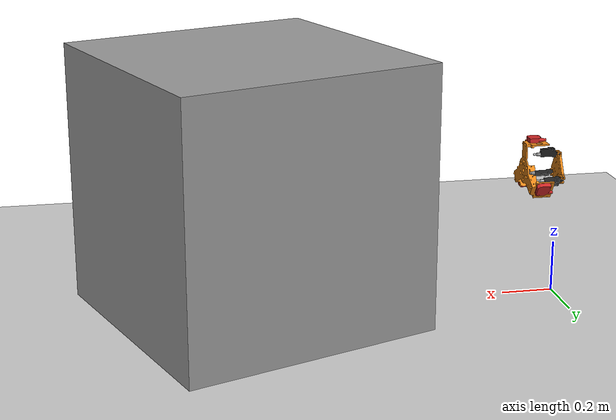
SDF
<sdf version="1.6">
 <world name="default">
  <light name="sun" type="directional">
   <pose>0 0 10 0 -0 0</pose>
   <diffuse>0.8 0.8 0.8 1</diffuse>
   <specular>0.2 0.2 0.2 1</specular>
   <attenuation>
    <range>1000</range>
    <constant>0.9</constant>
    <linear>0.01</linear>
    <quadratic>0.001</quadratic>
   </attenuation>
   <direction>-0.5 0.1 -0.9</direction>
  </light>
  <model name="ground_plane">
   <static>1</static>
   <link name="link">
    <collision name="collision">
     <geometry><plane><normal>0 0 1</normal><size>100 100</size></plane></geometry>
     <surface>
      <contact><collide_bitmask>65535</collide_bitmask></contact>
      <friction><ode><mu>100</mu><mu2>50</mu2></ode></friction>
     </surface>
    </collision>
    <visual name="visual">
     <cast_shadows>0</cast_shadows>
     <geometry><plane><normal>0 0 1</normal><size>100 100</size></plane></geometry>
     <material>
      <script><uri>file://media/materials/scripts/gazebo.material</uri><name>Gazebo/Grey</name></script>
     </material>
    </visual>
   </link>
  </model>
  <gravity>0 0 -9.8</gravity>
  <magnetic_field>6e-06 2.3e-05 -4.2e-05</magnetic_field>
  <atmosphere type="adiabatic"/>
  <physics name="default_physics" default="0" type="ode">
   <max_step_size>0.001</max_step_size>
   <real_time_factor>1</real_time_factor>
   <real_time_update_rate>1000</real_time_update_rate>
  </physics>
  <scene><ambient>0.4 0.4 0.4 1</ambient><background>0.7 0.7 0.7 1</background><shadows>1</shadows></scene>
  <audio><device>default</device></audio>
  <spherical_coordinates>
   <surface_model>EARTH_WGS84</surface_model>
   <latitude_deg>0</latitude_deg>
   <longitude_deg>0</longitude_deg>
   <elevation>0</elevation>
   <heading_deg>0</heading_deg>
  </spherical_coordinates>
  <model name="parabot">
   <link name="lower_platform">
    <inertial>
     <pose>-8e-06 -0 0.000606 0 -0 0</pose>
     <mass>0.0603778</mass>
     <inertia>
      <ixx>5.44707e-05</ixx>
      <ixy>-3.39473e-13</ixy>
      <ixz>-3.70667e-09</ixz>
      <iyy>5.44893e-05</iyy>
      <iyz>8.47232e-14</iyz>
      <izz>0.00010778</izz>
     </inertia>
    </inertial>
    <collision name="lower_platform_collision">
     <geometry>
      <mesh>
       <scale>1 1 1</scale>
       <uri>/home/jason/catkin_ws/src/ppr_stack/ppr_description/meshes/lower_platform.STL</uri>
      </mesh>
     </geometry>
    </collision>
    <visual name="lower_platform_visual">
     <geometry>
      <mesh>
       <scale>1 1 1</scale>
       <uri>/home/jason/catkin_ws/src/ppr_stack/ppr_description/meshes/lower_platform.STL</uri>
      </mesh>
     </geometry>
     <material><script><name>Gazebo/Orange</name><uri>__default__</uri></script></material>
    </visual>
   </link>
   <joint name="fixed_para" type="fixed">
    <pose>0 0 0.5 0 -0 0</pose>
    <parent>world</parent>
    <child>lower_platform</child>
   </joint>
   <link name="motor1_link">
    <pose>-0.06 -0.0001 0 0 -0 0</pose>
    <inertial>
     <pose>-0.003127 -4.3e-05 0.037103 0 -0 0</pose>
     <mass>0.0185186</mass>
     <inertia>
      <ixx>2.18492e-06</ixx>
      <ixy>3.13901e-09</ixy>
      <ixz>8.63034e-08</ixz>
      <iyy>2.49671e-06</iyy>
      <iyz>9.17597e-09</iyz>
      <izz>1.2683e-06</izz>
     </inertia>
    </inertial>
    <collision name="motor1_collision">
     <geometry>
      <mesh>
       <scale>1 1 1</scale>
       <uri>/home/jason/catkin_ws/src/ppr_stack/ppr_description/meshes/motor1.STL</uri>
      </mesh>
     </geometry>
    </collision>
    <visual name="motor1_visual">
     <geometry>
      <mesh>
       <scale>1 1 1</scale>
       <uri>/home/jason/catkin_ws/src/ppr_stack/ppr_description/meshes/motor1.STL</uri>
      </mesh>
     </geometry>
     <material><script><name>Gazebo/Black</name><uri>__default__</uri></script></material>
    </visual>
   </link>
   <joint name="motor1_joint" type="revolute">
    <child>motor1_link</child>
    <parent>lower_platform</parent>
    <axis>
     <xyz>0 1 0</xyz>
     <limit><lower>-0.785</lower><upper>0.785</upper><effort>100</effort><velocity>10</velocity></limit>
     <dynamics><spring_reference>0</spring_reference><spring_stiffness>0</spring_stiffness></dynamics>
     <use_parent_model_frame>1</use_parent_model_frame>
    </axis>
   </joint>
   <link name="connection1">
    <pose>-0.06 -0.0001 0.0734 0 0 -0.017453</pose>
    <inertial>
     <pose>-0 -0 0.039505 0 -0 0</pose>
     <mass>0.0022949</mass>
     <inertia>
      <ixx>1.6278e-07</ixx>
      <ixy>-6.967e-14</ixy>
      <ixz>6.9068e-13</ixz>
      <iyy>1.6278e-07</iyy>
      <iyz>3.4987e-13</iyz>
      <izz>3.1596e-08</izz>
     </inertia>
    </inertial>
    <collision name="connection1_collision">
     <geometry>
      <mesh>
       <scale>1 1 1</scale>
       <uri>/home/jason/catkin_ws/src/ppr_stack/ppr_description/meshes/connection1.STL</uri>
      </mesh>
     </geometry>
    </collision>
    <visual name="connection1_visual">
     <geometry>
      <mesh>
       <scale>1 1 1</scale>
       <uri>/home/jason/catkin_ws/src/ppr_stack/ppr_description/meshes/connection1.STL</uri>
      </mesh>
     </geometry>
    </visual>
   </link>
   <joint name="motor1" type="prismatic">
    <child>connection1</child>
    <parent>motor1_link</parent>
    <axis>
     <xyz>0 0 1</xyz>
     <limit><lower>-0.01</lower><upper>0.017</upper><effort>100</effort><velocity>10</velocity></limit>
     <dynamics>
      <damping>0.7</damping>
      <spring_reference>0</spring_reference>
      <spring_stiffness>0</spring_stiffness>
     </dynamics>
     <use_parent_model_frame>1</use_parent_model_frame>
    </axis>
   </joint>
   <link name="motor2_link">
    <pose>0.030087 -0.051912 0 0 -0 2.0944</pose>
    <inertial>
     <pose>-0.003127 -4.3e-05 0.037103 0 -0 0</pose>
     <mass>0.0185187</mass>
     <inertia>
      <ixx>2.18492e-06</ixx>
      <ixy>3.13901e-09</ixy>
      <ixz>8.63034e-08</ixz>
      <iyy>2.49671e-06</iyy>
      <iyz>9.17597e-09</iyz>
      <izz>1.2683e-06</izz>
     </inertia>
    </inertial>
    <collision name="motor2_collision">
     <geometry>
      <mesh>
       <scale>1 1 1</scale>
       <uri>/home/jason/catkin_ws/src/ppr_stack/ppr_description/meshes/motor2.STL</uri>
      </mesh>
     </geometry>
    </collision>
    <visual name="motor2_visual">
     <geometry>
      <mesh>
       <scale>1 1 1</scale>
       <uri>/home/jason/catkin_ws/src/ppr_stack/ppr_description/meshes/motor2.STL</uri>
      </mesh>
     </geometry>
     <material><script><name>Gazebo/Black</name><uri>__default__</uri></script></material>
    </visual>
   </link>
   <joint name="motor2_joint" type="revolute">
    <child>motor2_link</child>
    <parent>lower_platform</parent>
    <axis>
     <xyz>-0.866025 -0.5 0</xyz>
     <limit><lower>-0.785</lower><upper>0.785</upper><effort>100</effort><velocity>10</velocity></limit>
     <dynamics><spring_reference>0</spring_reference><spring_stiffness>0</spring_stiffness></dynamics>
     <use_parent_model_frame>1</use_parent_model_frame>
    </axis>
   </joint>
   <link name="connection2">
    <pose>0.030087 -0.051912 0.0734 0 -0 2.07694</pose>
    <inertial>
     <pose>-0 -0 0.039505 0 -0 0</pose>
     <mass>0.0022949</mass>
     <inertia>
      <ixx>1.6278e-07</ixx>
      <ixy>-6.967e-14</ixy>
      <ixz>6.9068e-13</ixz>
      <iyy>1.6278e-07</iyy>
      <iyz>3.4987e-13</iyz>
      <izz>3.1596e-08</izz>
     </inertia>
    </inertial>
    <collision name="connection2_collision">
     <geometry>
      <mesh>
       <scale>1 1 1</scale>
       <uri>/home/jason/catkin_ws/src/ppr_stack/ppr_description/meshes/connection2.STL</uri>
      </mesh>
     </geometry>
    </collision>
    <visual name="connection2_visual">
     <geometry>
      <mesh>
       <scale>1 1 1</scale>
       <uri>/home/jason/catkin_ws/src/ppr_stack/ppr_description/meshes/connection2.STL</uri>
      </mesh>
     </geometry>
    </visual>
   </link>
   <joint name="motor2" type="prismatic">
    <child>connection2</child>
    <parent>motor2_link</parent>
    <axis>
     <xyz>0 0 1</xyz>
     <limit><lower>-0.01</lower><upper>0.017</upper><effort>100</effort><velocity>10</velocity></limit>
     <dynamics>
      <damping>0.7</damping>
      <spring_reference>0</spring_reference>
      <spring_stiffness>0</spring_stiffness>
     </dynamics>
     <use_parent_model_frame>1</use_parent_model_frame>
    </axis>
   </joint>
   <link name="motor3_link">
    <pose>0.029913 0.052012 0 0 0 -2.0944</pose>
    <inertial>
     <pose>-0.003127 -4.3e-05 0.037103 0 -0 0</pose>
     <mass>0.0185186</mass>
     <inertia>
      <ixx>2.18492e-06</ixx>
      <ixy>3.13901e-09</ixy>
      <ixz>8.63034e-08</ixz>
      <iyy>2.49671e-06</iyy>
      <iyz>9.17597e-09</iyz>
      <izz>1.2683e-06</izz>
     </inertia>
    </inertial>
    <collision name="motor3_collision">
     <geometry>
      <mesh>
       <scale>1 1 1</scale>
       <uri>/home/jason/catkin_ws/src/ppr_stack/ppr_description/meshes/motor3.STL</uri>
      </mesh>
     </geometry>
    </collision>
    <visual name="motor3_visual">
     <geometry>
      <mesh>
       <scale>1 1 1</scale>
       <uri>/home/jason/catkin_ws/src/ppr_stack/ppr_description/meshes/motor3.STL</uri>
      </mesh>
     </geometry>
     <material><script><name>Gazebo/Black</name><uri>__default__</uri></script></material>
    </visual>
   </link>
   <joint name="motor3_joint" type="revolute">
    <child>motor3_link</child>
    <parent>lower_platform</parent>
    <axis>
     <xyz>0.866025 -0.5 0</xyz>
     <limit><lower>-0.785</lower><upper>0.785</upper><effort>100</effort><velocity>10</velocity></limit>
     <dynamics><spring_reference>0</spring_reference><spring_stiffness>0</spring_stiffness></dynamics>
     <use_parent_model_frame>1</use_parent_model_frame>
    </axis>
   </joint>
   <link name="connection3">
    <pose>0.029913 0.052012 0.0734 0 0 -2.11185</pose>
    <inertial>
     <pose>-0 -0 0.039505 0 -0 0</pose>
     <mass>0.0022949</mass>
     <inertia>
      <ixx>1.6278e-07</ixx>
      <ixy>-6.6347e-14</ixy>
      <ixz>6.196e-13</ixz>
      <iyy>1.6278e-07</iyy>
      <iyz>4.0246e-13</iyz>
      <izz>3.1595e-08</izz>
     </inertia>
    </inertial>
    <collision name="connection3_collision">
     <geometry>
      <mesh>
       <scale>1 1 1</scale>
       <uri>/home/jason/catkin_ws/src/ppr_stack/ppr_description/meshes/connection3.STL</uri>
      </mesh>
     </geometry>
    </collision>
    <visual name="connection3_visual">
     <geometry>
      <mesh>
       <scale>1 1 1</scale>
       <uri>/home/jason/catkin_ws/src/ppr_stack/ppr_description/meshes/connection3.STL</uri>
      </mesh>
     </geometry>
    </visual>
   </link>
   <joint name="motor3" type="prismatic">
    <child>connection3</child>
    <parent>motor3_link</parent>
    <axis>
     <xyz>0 0 1</xyz>
     <limit><lower>-0.01</lower><upper>0.017</upper><effort>100</effort><velocity>10</velocity></limit>
     <dynamics>
      <damping>0.7</damping>
      <spring_reference>0</spring_reference>
      <spring_stiffness>0</spring_stiffness>
     </dynamics>
     <use_parent_model_frame>1</use_parent_model_frame>
    </axis>
   </joint>
   <link name="upper_platform3">
    <pose>-0 -0 0.135513 0 -0 0</pose>
    <inertial>
     <pose>1.5e-05 -8e-06 -0.031799 0 -0 0</pose>
     <mass>0.30122</mass>
     <inertia>
      <ixx>0.000239611</ixx>
      <ixy>-3.7081e-14</ixy>
      <ixz>-1.01145e-14</ixz>
      <iyy>0.000239454</iyy>
      <iyz>1.44059e-14</iyz>
      <izz>0.000359706</izz>
     </inertia>
    </inertial>
    <collision name="upper_platform3_collision">
     <geometry>
      <mesh>
       <scale>1 1 1</scale>
       <uri>/home/jason/catkin_ws/src/ppr_stack/ppr_description/meshes/upper_platform3.STL</uri>
      </mesh>
     </geometry>
    </collision>
    <visual name="upper_platform3_visual">
     <geometry>
      <mesh>
       <scale>1 1 1</scale>
       <uri>/home/jason/catkin_ws/src/ppr_stack/ppr_description/meshes/upper_platform3.STL</uri>
      </mesh>
     </geometry>
     <material><script><name>Gazebo/Orange</name><uri>__default__</uri></script></material>
    </visual>
    <collision name="upper_platform3_fixed_joint_lump__sensor1_collision_1">
     <pose>0 0 0.113013 0 0 -3.14159</pose>
     <geometry>
      <mesh>
       <scale>1 1 1</scale>
       <uri>/home/jason/catkin_ws/src/ppr_stack/ppr_description/meshes/sensor1.STL</uri>
      </mesh>
     </geometry>
    </collision>
    <visual name="upper_platform3_fixed_joint_lump__sensor1_visual_1">
     <pose>-0.1175 0 -0.014373 0 0 -3.14159</pose>
     <geometry>
      <mesh>
       <scale>1 1 1</scale>
       <uri>/home/jason/catkin_ws/src/ppr_stack/ppr_description/meshes/sensor1.STL</uri>
      </mesh>
     </geometry>
     <material><script><name>Gazebo/Red</name><uri>__default__</uri></script></material>
    </visual>
    <sensor name="laser1" type="ray">
     <pose>-0.1175 0 -0.014373 3.14159 -1.57079 3.14159</pose>
     <visualize>1</visualize>
     <update_rate>125</update_rate>
     <ray>
      <scan>
       <horizontal>
        <samples>1</samples>
        <resolution>1</resolution>
        <min_angle>-0</min_angle>
        <max_angle>0</max_angle>
       </horizontal>
       <vertical><samples>1</samples><min_angle>0</min_angle><max_angle>0</max_angle></vertical>
      </scan>
      <range><min>0.1</min><max>1</max><resolution>0.01</resolution></range>
      <noise><type>gaussian</type><mean>0</mean><stddev>0.0001</stddev></noise>
     </ray>
     <plugin name="gazebo_ros_laser_controller1" filename="libgazebo_ros_laser.so">
      <topicName>parabot/laser1</topicName>
      <frameName>upper_platform3</frameName>
      <robotNamespace>/</robotNamespace>
     </plugin>
    </sensor>
    <collision name="upper_platform3_fixed_joint_lump__sensor2_collision_2">
     <pose>0 0 0.113013 0 0 -1.0472</pose>
     <geometry>
      <mesh>
       <scale>1 1 1</scale>
       <uri>/home/jason/catkin_ws/src/ppr_stack/ppr_description/meshes/sensor2.STL</uri>
      </mesh>
     </geometry>
    </collision>
    <visual name="upper_platform3_fixed_joint_lump__sensor2_visual_2">
     <pose>0.05875 -0.101758 -0.014373 0 0 -1.0472</pose>
     <geometry>
      <mesh>
       <scale>1 1 1</scale>
       <uri>/home/jason/catkin_ws/src/ppr_stack/ppr_description/meshes/sensor2.STL</uri>
      </mesh>
     </geometry>
     <material><script><name>Gazebo/Red</name><uri>__default__</uri></script></material>
    </visual>
    <sensor name="laser2" type="ray">
     <pose>0.05875 -0.101758 -0.014373 3.14159 -1.57079 3.14159</pose>
     <visualize>1</visualize>
     <update_rate>125</update_rate>
     <ray>
      <scan>
       <horizontal>
        <samples>1</samples>
        <resolution>1</resolution>
        <min_angle>-0</min_angle>
        <max_angle>0</max_angle>
       </horizontal>
       <vertical><samples>1</samples><min_angle>0</min_angle><max_angle>0</max_angle></vertical>
      </scan>
      <range><min>0.1</min><max>1</max><resolution>0.01</resolution></range>
      <noise><type>gaussian</type><mean>0</mean><stddev>0.0001</stddev></noise>
     </ray>
     <plugin name="gazebo_ros_laser_controller2" filename="libgazebo_ros_laser.so">
      <topicName>parabot/laser2</topicName>
      <frameName>upper_platform3</frameName>
      <robotNamespace>/</robotNamespace>
     </plugin>
    </sensor>
    <collision name="upper_platform3_fixed_joint_lump__sensor3_collision_3">
     <pose>0 0 0.113013 0 -0 1.0472</pose>
     <geometry>
      <mesh>
       <scale>1 1 1</scale>
       <uri>/home/jason/catkin_ws/src/ppr_stack/ppr_description/meshes/sensor3.STL</uri>
      </mesh>
     </geometry>
    </collision>
    <visual name="upper_platform3_fixed_joint_lump__sensor3_visual_3">
     <pose>0.05875 0.101758 -0.014373 0 -0 1.0472</pose>
     <geometry>
      <mesh>
       <scale>1 1 1</scale>
       <uri>/home/jason/catkin_ws/src/ppr_stack/ppr_description/meshes/sensor3.STL</uri>
      </mesh>
     </geometry>
     <material><script><name>Gazebo/Red</name><uri>__default__</uri></script></material>
    </visual>
    <sensor name="laser3" type="ray">
     <pose>0.05875 0.101758 -0.014373 3.14159 -1.57079 3.14159</pose>
     <visualize>1</visualize>
     <update_rate>125</update_rate>
     <ray>
      <scan>
       <horizontal>
        <samples>1</samples>
        <resolution>1</resolution>
        <min_angle>-0</min_angle>
        <max_angle>0</max_angle>
       </horizontal>
       <vertical><samples>1</samples><min_angle>0</min_angle><max_angle>0</max_angle></vertical>
      </scan>
      <range><min>0.1</min><max>1</max><resolution>0.01</resolution></range>
      <noise><type>gaussian</type><mean>0</mean><stddev>0.0001</stddev></noise>
     </ray>
     <plugin name="gazebo_ros_laser_controller3" filename="libgazebo_ros_laser.so">
      <topicName>parabot/laser3</topicName>
      <frameName>upper_platform3</frameName>
      <robotNamespace>/</robotNamespace>
     </plugin>
    </sensor>
   </link>
   <joint name="ball3" type="ball">
    <pose>0.029913 0.052012 0 0 -0 0</pose>
    <child>upper_platform3</child>
    <parent>connection3</parent>
   </joint>
   <joint name="ball1" type="ball">
    <pose>-0.06 -0.0001 0 0 -0 0</pose>
    <child>upper_platform3</child>
    <parent>connection1</parent>
   </joint>
   <joint name="ball2" type="ball">
    <pose>0.030087 -0.051912 0 0 -0 0</pose>
    <child>upper_platform3</child>
    <parent>connection2</parent>
   </joint>
   <plugin name="parabot_hw_sim_plugin" filename="libparabot_plugin.so">
    <robotNamespace>parabot</robotNamespace>
    <jointName>motor1 motor2 motor3</jointName>
   </plugin>
   <pose>0 0 0.500001 0.000675 1.57072 0.000675</pose>
  </model>
  <model name="unit_box">
   <pose>1.2 -1e-06 0.5 0 -0 0.349998</pose>
   <link name="link">
    <inertial>
     <mass>1</mass>
     <inertia>
      <ixx>0.166667</ixx>
      <ixy>0</ixy>
      <ixz>0</ixz>
      <iyy>0.166667</iyy>
      <iyz>0</iyz>
      <izz>0.166667</izz>
     </inertia>
    </inertial>
    <collision name="collision"><geometry><box><size>1 1 1</size></box></geometry></collision>
    <visual name="visual">
     <geometry><box><size>1 1 1</size></box></geometry>
     <material>
      <script><name>Gazebo/Grey</name><uri>file://media/materials/scripts/gazebo.material</uri></script>
     </material>
    </visual>
   </link>
  </model>
 </world>
</sdf>
